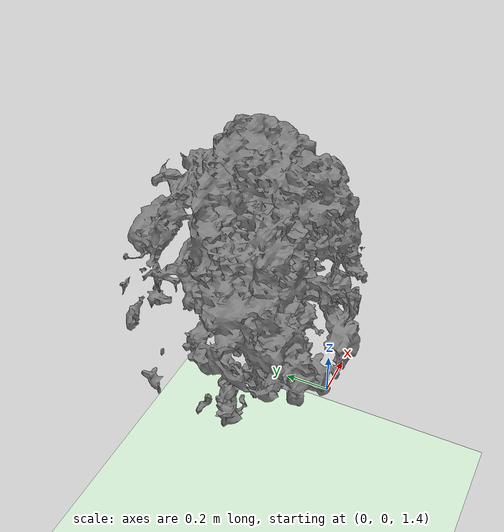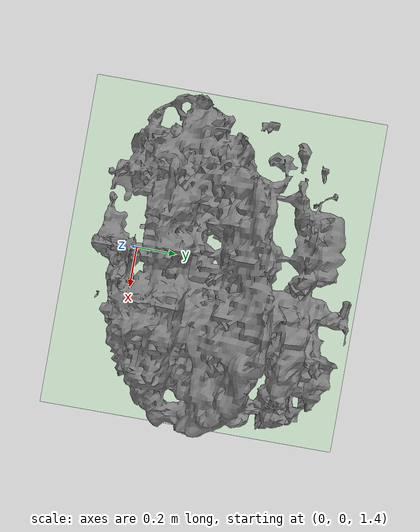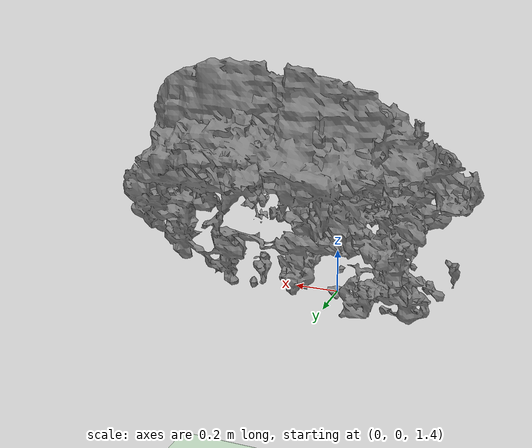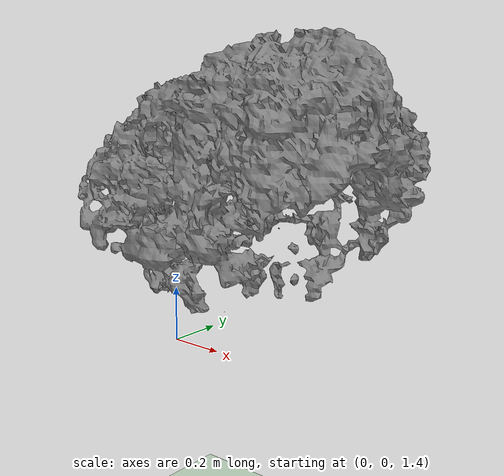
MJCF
<mujoco model="bluesoap">
  <asset>
    <mesh file="bluesoap/stl/bluesoap_level_70_blender.stl" name="bluesoap_mesh" scale="1.0 1.0 1.0"/>
    <texture builtin="gradient" height="100" rgb1="1 1 1" rgb2="0 0 0" type="skybox" width="100"/>
    <texture builtin="flat" height="1278" mark="cross" markrgb="1 1 1" name="texgeom" random="0.01" rgb1="0.8 0.6 0.4" rgb2="0.8 0.6 0.4" type="cube" width="127"/>
    <texture builtin="checker" height="100" name="texplane" rgb1="0 0 0" rgb2="0.8 0.8 0.8" type="2d" width="100"/>
    <material name="MatPlane" reflectance="0.5" shininess="1" specular="1" texrepeat="60 60" texture="texplane"/>
    <material name="geom" texture="texgeom" texuniform="true"/>
  </asset>
  <worldbody>
    <light cutoff="100" diffuse="1 1 1" dir="-0 0 -1.3" directional="true" exponent="1" pos="0 0 1.3" specular=".1 .1 .1"/>
    <geom conaffinity="1" condim="3" material="MatPlane" name="floor" pos="0 0 0" rgba="0.8 0.9 0.8 1" size="40 40 40" type="plane"/>
    <body name="object">
      <joint type="free"/>
      <geom pos="0 0.3 2.00" quat="0 -1 0 0" mesh="bluesoap_mesh" type="mesh" solimp="0.998 0.998 0.001" solref="0.001 1" density="50" friction="0.95 0.3 0.1"  group="0" condim="4"/>
    </body>
    <site rgba="0 0 0 0" size="0.005" pos="0 0 -0.045" name="bottom_site"/>
    <site rgba="0 0 0 0" size="0.005" pos="0 0 0.03" name="top_site"/>
    <site rgba="0 0 0 0" size="0.005" pos="0.03 0.03 0" name="horizontal_radius_site"/>
  </worldbody>
</mujoco>
